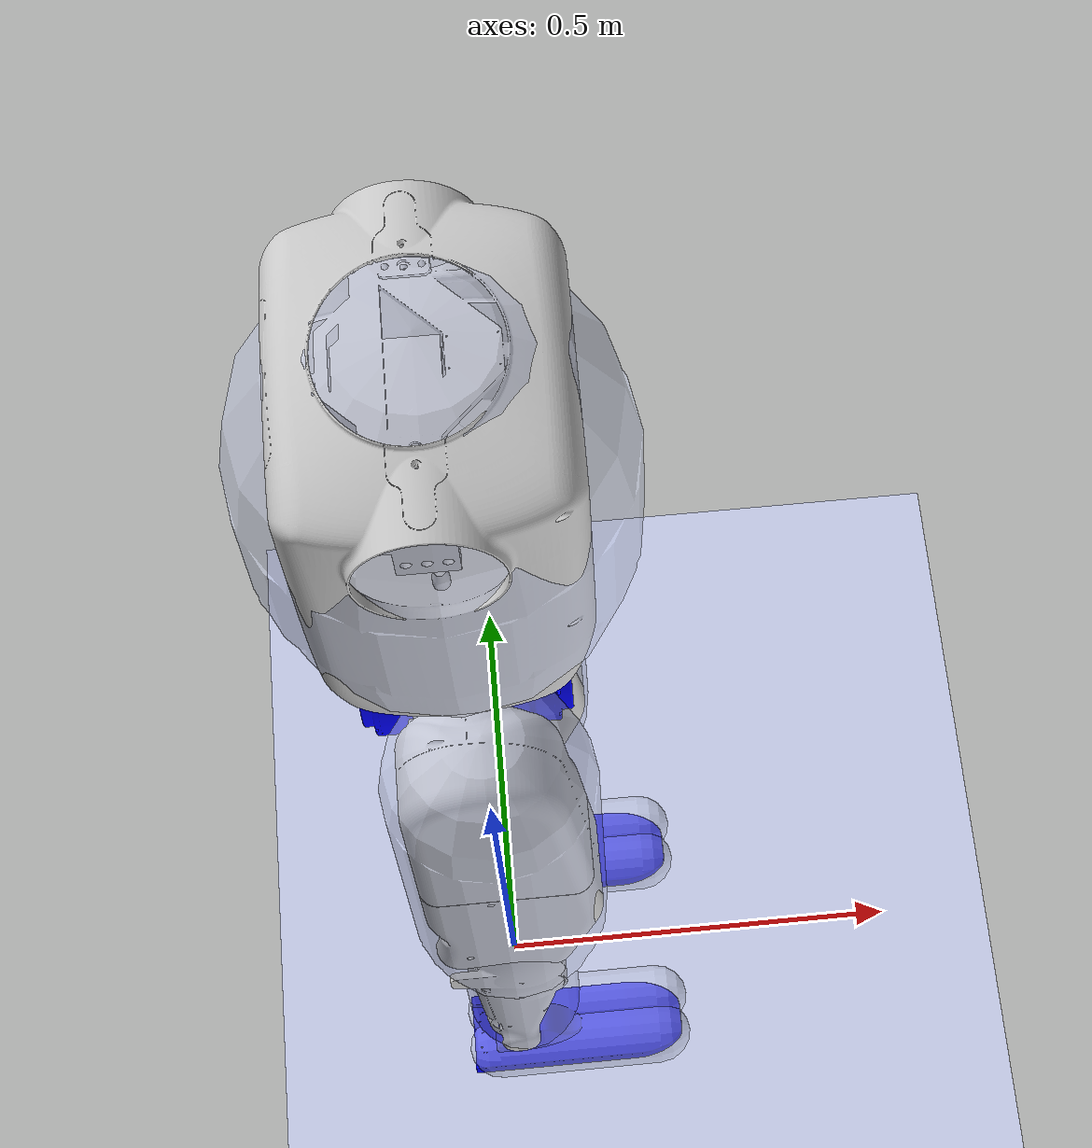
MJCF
<mujoco model="p73_walker">
  <compiler angle="radian" meshdir="../meshes/"/>
  <option timestep='0.001' iterations="50" tolerance="1e-5" solver="Newton" jacobian="dense" cone="elliptic" noslip_iterations="30" noslip_tolerance="1e-5"/>

  <default>
    <default class="waist_yaw_motor">
      <joint damping="2.5" armature="0.16" frictionloss="5.0"/>
    </default>
    <default class="hip_roll_motor">
      <joint damping="2.5" armature="0.96" frictionloss="5.0"/>
    </default>
    <default class="hip_pitch_motor">
      <joint damping="2.5" armature="0.375" frictionloss="5.0"/>
    </default>
    <default class="hip_yaw_motor">
      <joint damping="1.0" armature="0.0625" frictionloss="2.0"/>
    </default>
    <default class="knee_pitch_motor">
      <joint damping="2.0" armature="0.35630" frictionloss="3.0"/>
    </default>
    <default class="ankle_pitch_motor">
      <joint damping="1.0" armature="0.12886" frictionloss="2.0"/>
    </default>
    <default class="ankle_roll_motor">
      <joint damping="1.0" armature="0.12883" frictionloss="2.0"/>
    </default>
    <default class="viz">
      <geom contype="0" conaffinity="0" group="1" type="mesh" rgba="1.0 1.0 1.0 1" />
    </default>
    <default class="cls">
      <geom group="2" rgba="0.79216 0.81961 0.93333 0.5"/>
      <default class="cls_torso">
        <geom contype="1" conaffinity="8"/>
      </default>
      <default class="cls_lleg">
        <geom contype="2" conaffinity="12"/>
      </default>
      <default class="cls_rleg">
        <geom contype="4" conaffinity="10"/>
      </default>
      <default class="cls_ground">
        <geom contype="8" conaffinity="7"/>
      </default>
    </default>
  </default>

  <asset>
    <mesh name="base_link" file="base_link.stl" scale="0.001 0.001 0.001"/>
    <mesh name="WaistYaw_Link" file="WaistYaw_Link.stl" scale="0.001 0.001 0.001"/>
    <mesh name="R_HipRoll_Link" file="R_HipRoll_Link.stl" scale="0.001 0.001 0.001"/>
    <mesh name="L_HipRoll_Link" file="L_HipRoll_Link.stl" scale="0.001 0.001 0.001"/>
    <mesh name="R_HipPitch_Link" file="R_HipPitch_Link.stl" scale="0.001 0.001 0.001"/>
    <mesh name="L_HipPitch_Link" file="L_HipPitch_Link.stl" scale="0.001 0.001 0.001"/>
    <mesh name="R_Thigh_Link" file="R_Thigh_Link.stl" scale="0.001 0.001 0.001"/>
    <mesh name="L_Thigh_Link" file="L_Thigh_Link.stl" scale="0.001 0.001 0.001"/>
    <mesh name="R_Knee_Link" file="R_Knee_Link.stl" scale="0.001 0.001 0.001"/>
    <mesh name="L_Knee_Link" file="L_Knee_Link.stl" scale="0.001 0.001 0.001"/>
    <mesh name="L_AnkleRoll_Link" file="L_AnkleRoll_Link.stl" scale="0.001 0.001 0.001"/>
    <mesh name="R_AnkleRoll_Link" file="R_AnkleRoll_Link.stl" scale="0.001 0.001 0.001"/>
    <mesh name="L_Foot_Link" file="L_Foot_Link.stl" scale="0.001 0.001 0.001"/>
    <mesh name="R_Foot_Link" file="R_Foot_Link.stl" scale="0.001 0.001 0.001"/>

    <texture type="skybox" builtin="gradient" width="128" height="128" rgb1="0.4 0.6 0.8" rgb2="0 0 0"/>
    <texture name="texplane" type="2d" builtin="checker" rgb1=".4 .4 .4" rgb2=".6 .6 .6" width="512" height="512"/>
    <material name='MatPlane' reflectance='0.3' texture="texplane" texrepeat="1 1" texuniform="true"/>
    <material name="silver" rgba="0.8 0.8 0.8 1.0"/>
    <material name="blue" rgba="0.0 0.0 1.0 1.0"/>
  </asset>

  <worldbody>
    <geom name="floor"
        class="cls_ground"
        group="0"
        type="plane"
        size="0 0 0.01"
        material="MatPlane"
        friction="0.6"
        condim="3"
        priority="1"/>
    <light directional="true" diffuse=".8 .8 .8" pos="0 0 10" dir="0 0 -10"/>
    <light directional="true" diffuse=".5 .5 .5" pos="10 0 0" dir="-10 0 0"/>

    <body name="base_link" pos="0 0 0.895">
      <joint name="world_to_base" type="free" limited="false" actuatorfrclimited="false"  frictionloss="1e10" damping="0" stiffness="0" armature="0"/>
      <inertial pos="0.00118423 8.43237e-05 0.0218623" quat="0.520509 0.476955 0.480298 0.520479" mass="5.47506" diaginertia="0.0323962 0.0262879 0.0208649"/>
      <geom type="mesh" contype="0" conaffinity="0" density="0" mesh="base_link" material="blue" group="1"/>
      <site name="imu" type="cylinder" size="0.005 0.005" pos="-0.08 0.0 0.0725" group="4" rgba=".1 .9 .1 1"/>

      <body name="L_HipRoll_Link" pos="-0.0155 0 0">
        <inertial pos="0.0124197 0.0490939 -0.000127375" quat="0.713726 0.69689 -0.0416249 -0.0566259" mass="1.27027" diaginertia="0.00206605 0.00180727 0.00123469"/>
        <joint name="L_HipRoll_Joint" class="hip_roll_motor" pos="0 0 0" axis="1 0 0" range="-0.58 0.3" actuatorfrcrange="-352 352"/>
        <geom pos="0.0155 0 0" quat="1 0 0 0" type="mesh" contype="0" conaffinity="0" group="1" density="0" mesh="L_HipRoll_Link" material="silver"/>
        <geom pos="0.0155 0 0" quat="1 0 0 0" type="mesh" mesh="L_HipRoll_Link" rgba="0.8 0.8 0.8 1"/>
        <body name="L_HipPitch_Link" pos="0.0155 0.0805 0">
          <inertial pos="0.00471255 0.0463623 -0.0672883" quat="0.699545 -0.0352894 0.0214462 0.713394" mass="6.85744" diaginertia="0.064219 0.0569434 0.0279425"/>
          <joint name="L_HipPitch_Joint" class="hip_pitch_motor" pos="0 0 0" axis="0 -1 0" range="-1.57 2.09" actuatorfrcrange="-220 220"/>
          <geom pos="0 -0.0805 0" quat="1 0 0 0" type="mesh" contype="0" conaffinity="0" group="1" density="0" mesh="L_HipPitch_Link" material="silver"/>
          <geom name="Left_Hip" class="cls_lleg" size="0.11  0.18" pos="0.015 0.045 -0.19" type="capsule" />
          <body name="L_Thigh_Link" pos="0 0.04 -0.202">
            <inertial pos="0.00687715 -0.00249606 -0.0919431" quat="0.693505 0.0874998 0.0786175 0.710784" mass="4.90328" diaginertia="0.040768 0.0370279 0.0240011"/>
            <joint name="L_HipYaw_Joint" class="hip_yaw_motor" pos="0 0 0" axis="0 0 -1" range="-0.78 0.78" actuatorfrcrange="-220 220"/>
            <geom pos="0 -0.1205 0.202" quat="1 0 0 0" type="mesh" contype="0" conaffinity="0" group="1" density="0" mesh="L_Thigh_Link" material="silver"/>
            <body name="L_Knee_Link" pos="-0.042753 -0.0195 -0.198462">
              <inertial pos="0.0564446 0.0181463 -0.166162" quat="0.699176 0.00776861 0.0179462 0.714682" mass="8.18145" diaginertia="0.134494 0.131901 0.0170098"/>
              <joint name="L_Knee_Joint" class="knee_pitch_motor" pos="0 0 0" axis="0 1 0" range="0 2.56" actuatorfrcrange="-95 95"/>
              <geom pos="0.042753 -0.101 0.400462" quat="1 0 0 0" type="mesh" contype="0" conaffinity="0" group="1" density="0" mesh="L_Knee_Link" material="silver"/>
              <geom name="Left_Shin" class="cls_lleg" size="0.07 0.17" pos="0.055 0.02 -0.16" type="capsule" />
              <body name="L_AnkleRoll_Link" pos="0.043642 -0.0025 -0.415855">
                <inertial pos="-0.000538633 0.0234999 -0.00113648" quat="0.5 0.5 -0.5 0.5" mass="0.161268" diaginertia="6.8e-05 5.4e-05 3.2e-05"/>
                <joint name="L_AnklePitch_Joint" class="ankle_pitch_motor" pos="0 0 0" axis="0 1 0" range="-1.05 0.7" actuatorfrcrange="-95 95"/>
                <geom pos="-0.000889 -0.0985 0.816317" quat="1 0 0 0" type="mesh" contype="0" conaffinity="0" group="1" density="0" mesh="L_AnkleRoll_Link" material="silver"/>
                <geom pos="-0.000889 -0.0985 0.816317" quat="1 0 0 0" type="mesh" mesh="L_AnkleRoll_Link" rgba="0.8 0.8 0.8 1"/>
                <body name="L_Foot_Link" pos="0.011 0.0235 0">
                  <inertial pos="0.0390789 8.77121e-09 -0.0626394" quat="0 0.722655 0 0.691209" mass="2.32904" diaginertia="0.0143825 0.012898 0.00251755"/>
                  <joint name="L_AnkleRoll_Joint" class="ankle_roll_motor" pos="0 0 0" axis="1 0 0" range="-0.42 0.42" actuatorfrcrange="-95 95"/>
                  <geom pos="-0.011889 -0.122 0.816317" quat="1 0 0 0" type="mesh" contype="0" conaffinity="0" group="1" density="0" mesh="L_Foot_Link" material="blue"/>
                  <geom name="Left_Outer_Foot" class="cls_lleg" size="0.04 0.105" quat="0.707107 0 0.707107 0" pos="0.065 0.025 -0.05" type="capsule" />
                  <geom name="Left_Inner_Foot" class="cls_lleg" size="0.04 0.105" quat="0.707107 0 0.707107 0" pos="0.065 -0.025 -0.05" type="capsule" />
                </body>
              </body>
            </body>
          </body>
        </body>
      </body>

      <body name="R_HipRoll_Link" pos="0.0155 0 0">
        <inertial pos="-0.0138626 -0.045575 -0.000138455" quat="0.695083 0.713545 -0.0610603 -0.0631207" mass="1.17879" diaginertia="0.00200213 0.00174939 0.00114848"/>
        <joint name="R_HipRoll_Joint" class="hip_roll_motor" pos="0 0 0" axis="-1 0 0" range="-0.58 0.3" actuatorfrcrange="-352 352"/>
        <geom pos="-0.0155 0 0" quat="1 0 0 0" type="mesh" contype="0" conaffinity="0" group="1" density="0" mesh="R_HipRoll_Link" material="silver"/>
        <body name="R_HipPitch_Link" pos="-0.0155 -0.0805 0">
          <inertial pos="0.00471264 -0.0463621 -0.067288" quat="0.713394 0.0214462 -0.0352894 0.699545" mass="6.85746" diaginertia="0.064219 0.0569434 0.0279425"/>
          <joint name="R_HipPitch_Joint" class="hip_pitch_motor" pos="0 0 0" axis="0 1 0" range="-2.09 1.57" actuatorfrcrange="-220 220"/>
          <geom pos="0 0.0805 0" quat="1 0 0 0" type="mesh" contype="0" conaffinity="0" group="1" density="0" mesh="R_HipPitch_Link" material="silver"/>
          <geom name="Right_Hip" class="cls_rleg" size="0.11  0.18" pos="0.015 -0.045 -0.19" type="capsule" />
          <body name="R_Thigh_Link" pos="0 -0.04 -0.202">
            <inertial pos="0.00671945 0.00318273 -0.0917388" quat="0.714512 0.0771894 0.0882891 0.689724" mass="4.99569" diaginertia="0.0408711 0.037235 0.024211"/>
            <joint name="R_HipYaw_Joint" class="hip_yaw_motor" pos="0 0 0" axis="0 0 -1" range="-0.78 0.78" actuatorfrcrange="-220 220"/>
            <geom pos="0 0.1205 0.202" quat="1 0 0 0" type="mesh" contype="0" conaffinity="0" group="1" density="0" mesh="R_Thigh_Link" material="silver"/>
            <body name="R_Knee_Link" pos="-0.042753 0.0195 -0.198462">
              <inertial pos="0.0571771 -0.0182457 -0.166829" quat="0.718312 0.0198614 0.0102388 0.695362" mass="7.96682" diaginertia="0.130318 0.1281 0.016583"/>
              <joint name="R_Knee_Joint" class="knee_pitch_motor" pos="0 0 0" axis="0 -1 0" range="-2.56 0" actuatorfrcrange="-95 95"/>
              <geom pos="0.042753 0.101 0.400462" quat="1 0 0 0" type="mesh" contype="0" conaffinity="0" group="1" density="0" mesh="R_Knee_Link" material="silver"/>
              <geom name="Right_Shin" class="cls_rleg" size="0.07 0.17" pos="0.055 -0.02 -0.16" type="capsule" />
              <body name="R_AnkleRoll_Link" pos="0.043642 0.0025 -0.415855">
                <inertial pos="-0.000538632 -0.0235001 -0.00113648" quat="0.5 0.5 -0.5 0.5" mass="0.161268" diaginertia="6.8e-05 5.4e-05 3.2e-05"/>
                <joint name="R_AnklePitch_Joint" class="ankle_pitch_motor" pos="0 0 0" axis="0 -1 0" range="-0.7 1.05" actuatorfrcrange="-95 95"/>
                <geom pos="-0.000889 0.0985 0.816317" quat="1 0 0 0" type="mesh" contype="0" conaffinity="0" group="1" density="0" mesh="R_AnkleRoll_Link" material="silver"/>
                <geom pos="-0.000889 0.0985 0.816317" quat="1 0 0 0" type="mesh" mesh="R_AnkleRoll_Link" rgba="0.8 0.8 0.8 1"/>
                <body name="R_Foot_Link" pos="0.011 -0.0235 0">
                  <inertial pos="0.0390789 7.20535e-09 -0.0626394" quat="0 0.722655 0 0.691209" mass="2.32904" diaginertia="0.0143825 0.012898 0.00251755"/>
                  <joint name="R_AnkleRoll_Joint" class="ankle_roll_motor" pos="0 0 0" axis="1 0 0" range="-0.42 0.42" actuatorfrcrange="-95 95"/>
                  <geom pos="-0.011889 0.122 0.816317" quat="1 0 0 0" type="mesh" contype="0" conaffinity="0" group="1" density="0" mesh="R_Foot_Link" material="blue"/>
                  <geom name="Right_Outer_Foot" class="cls_rleg" size="0.04 0.105" quat="0.707107 0 0.707107 0" pos="0.065 0.025 -0.05" type="capsule" />
                  <geom name="Right_Inner_Foot" class="cls_rleg" size="0.04 0.105" quat="0.707107 0 0.707107 0" pos="0.065 -0.025 -0.05" type="capsule" />
                </body>
              </body>
            </body>
          </body>
        </body>
      </body>

      <body name="WaistYaw_Link" pos="0 0 0.0955">
        <inertial pos="-0.00225139 0.000202761 0.243933" quat="0.999949 -0.000255431 -0.00677998 -0.00747803" mass="7.60539" diaginertia="0.205795 0.194814 0.0547032"/>
        <geom pos="0 0 -0.0955" quat="1 0 0 0" type="mesh" contype="0" conaffinity="0" group="1" density="0" mesh="WaistYaw_Link" material="silver"/>
        <geom name="Waist" class="cls_torso" size="0.06 0.02" quat="1 0 0 0" pos="0.0 -0.0 0.0385" type="capsule" />
        <geom name="Chest" class="cls_torso" size="0.18 0.06" pos="0.005 -0.0 0.27" type="capsule" />
      </body>

  </body>

  </worldbody>

  <actuator>
    <motor name="L_HipRoll_motor"    joint="L_HipRoll_Joint"    ctrllimited="true" ctrlrange="-352 352"/>
    <motor name="L_HipPitch_motor"   joint="L_HipPitch_Joint"   ctrllimited="true" ctrlrange="-220 220"/>
    <motor name="L_HipYaw_motor"     joint="L_HipYaw_Joint"     ctrllimited="true" ctrlrange="-95 95"/>
    <motor name="L_Knee_motor"       joint="L_Knee_Joint"       ctrllimited="true" ctrlrange="-220 220"/>
    <motor name="L_AnklePitch_motor" joint="L_AnklePitch_Joint" ctrllimited="true" ctrlrange="-95 95"/>
    <motor name="L_AnkleRoll_motor"  joint="L_AnkleRoll_Joint"  ctrllimited="true" ctrlrange="-95 95"/>
    <motor name="R_HipRoll_motor"    joint="R_HipRoll_Joint"    ctrllimited="true" ctrlrange="-352 352"/>
    <motor name="R_HipPitch_motor"   joint="R_HipPitch_Joint"   ctrllimited="true" ctrlrange="-220 220"/>
    <motor name="R_HipYaw_motor"     joint="R_HipYaw_Joint"     ctrllimited="true" ctrlrange="-95 95"/>
    <motor name="R_Knee_motor"       joint="R_Knee_Joint"       ctrllimited="true" ctrlrange="-220 220"/>
    <motor name="R_AnklePitch_motor" joint="R_AnklePitch_Joint" ctrllimited="true" ctrlrange="-95 95"/>
    <motor name="R_AnkleRoll_motor"  joint="R_AnkleRoll_Joint"  ctrllimited="true" ctrlrange="-95 95"/>
  </actuator>

  <sensor>
    <framequat name="pelvis-orientation" objtype="site" objname="imu"/>
    <gyro name="pelvis-angular-velocity" site="imu" noise="5e-4" cutoff="34.9"/>
    <accelerometer name="pelvis-linear-acceleration" site="imu" noise="1e-2" cutoff="157"/>
  </sensor>

<keyframe>
  <key name="stand"
       qpos="0 0 0.895 1 0 0 0
             0.0  0.18 0.0  0.35 -0.17 0.0
             0.0 -0.18 0.0 -0.35  0.17 0.0"/>

</keyframe>

</mujoco>
